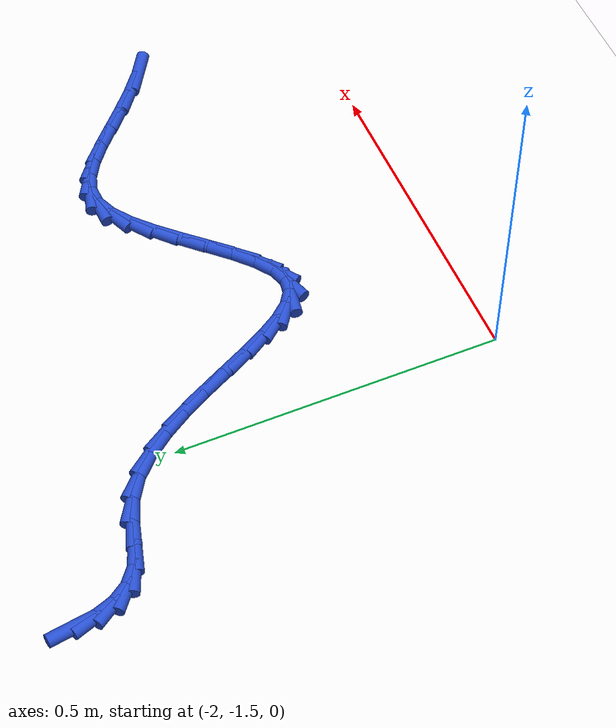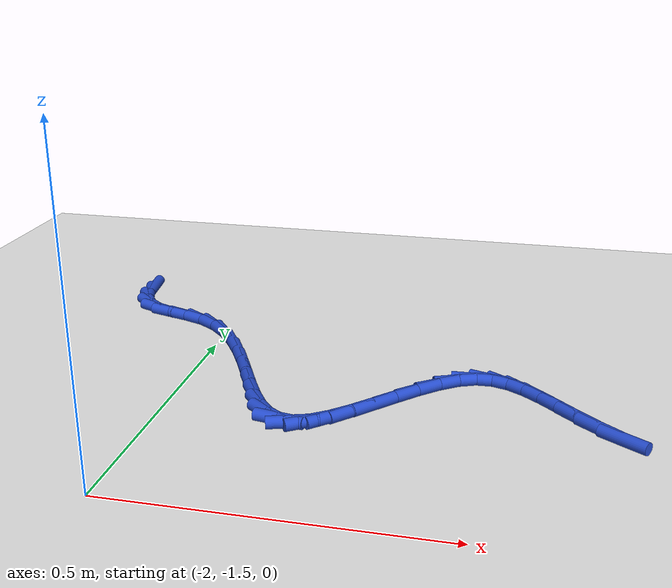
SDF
<sdf version="1.6">
 <world name="default">
  <model name="ground_plane">
   <static>1</static>
   <link name="link">
    <collision name="collision">
     <geometry><plane><normal>0 0 1</normal><size>100 100</size></plane></geometry>
     <surface><friction><ode><mu>100</mu><mu2>50</mu2></ode></friction></surface>
    </collision>
    <visual name="visual">
     <cast_shadows>0</cast_shadows>
     <geometry><plane><normal>0 0 1</normal><size>100 100</size></plane></geometry>
     <material>
      <script><uri>file://media/materials/scripts/gazebo.material</uri><name>Gazebo/WhiteGlow</name></script>
     </material>
    </visual>
   </link>
  </model>
  <model name="line">
   <link name="link_125">
    <pose>-2.2099271606794737 -0.7741217644108663 0.01 0 1.57 -1.4331314085117357</pose>
    <collision name="collision">
     <geometry><cylinder><radius>0.01</radius><length>0.08</length></cylinder></geometry>
    </collision>
    <visual name="visual">
     <material>
      <script><name>Gazebo/Blue</name><uri>file://media/materials/scripts/gazebo.material</uri></script>
     </material>
     <geometry><cylinder><radius>0.01</radius><length>0.08</length></cylinder></geometry>
    </visual>
   </link>
   <link name="link_126">
    <pose>-2.2053103885683636 -0.8074459412216787 0.01 0 1.57 -1.240996135593505</pose>
    <collision name="collision">
     <geometry><cylinder><radius>0.01</radius><length>0.08</length></cylinder></geometry>
    </collision>
    <visual name="visual">
     <material>
      <script><name>Gazebo/Blue</name><uri>file://media/materials/scripts/gazebo.material</uri></script>
     </material>
     <geometry><cylinder><radius>0.01</radius><length>0.08</length></cylinder></geometry>
    </visual>
   </link>
   <link name="link_127">
    <pose>-2.1953451962996913 -0.8365582542912782 0.01 0 1.57 -0.9869159704798931</pose>
    <collision name="collision">
     <geometry><cylinder><radius>0.01</radius><length>0.08</length></cylinder></geometry>
    </collision>
    <visual name="visual">
     <material>
      <script><name>Gazebo/Blue</name><uri>file://media/materials/scripts/gazebo.material</uri></script>
     </material>
     <geometry><cylinder><radius>0.01</radius><length>0.08</length></cylinder></geometry>
    </visual>
   </link>
   <link name="link_128">
    <pose>-2.1793203222098283 -0.8608115925272224 0.01 0 1.57 -0.6882502910422797</pose>
    <collision name="collision">
     <geometry><cylinder><radius>0.01</radius><length>0.08</length></cylinder></geometry>
    </collision>
    <visual name="visual">
     <material>
      <script><name>Gazebo/Blue</name><uri>file://media/materials/scripts/gazebo.material</uri></script>
     </material>
     <geometry><cylinder><radius>0.01</radius><length>0.08</length></cylinder></geometry>
    </visual>
   </link>
   <link name="link_129">
    <pose>-2.1565245046351453 -0.8795588448370683 0.01 0 1.57 -0.405371855896339</pose>
    <collision name="collision">
     <geometry><cylinder><radius>0.01</radius><length>0.08</length></cylinder></geometry>
    </collision>
    <visual name="visual">
     <material>
      <script><name>Gazebo/Blue</name><uri>file://media/materials/scripts/gazebo.material</uri></script>
     </material>
     <geometry><cylinder><radius>0.01</radius><length>0.08</length></cylinder></geometry>
    </visual>
   </link>
   <link name="link_130">
    <pose>-2.1264834247838382 -0.8924506675723213 0.01 0 1.57 -0.2873727111675844</pose>
    <collision name="collision">
     <geometry><cylinder><radius>0.01</radius><length>0.08</length></cylinder></geometry>
    </collision>
    <visual name="visual">
     <material>
      <script><name>Gazebo/Blue</name><uri>file://media/materials/scripts/gazebo.material</uri></script>
     </material>
     <geometry><cylinder><radius>0.01</radius><length>0.08</length></cylinder></geometry>
    </visual>
   </link>
   <link name="link_131">
    <pose>-2.09160453492498 -0.9027592550367908 0.01 0 1.57 -0.36228157171606634</pose>
    <collision name="collision">
     <geometry><cylinder><radius>0.01</radius><length>0.08</length></cylinder></geometry>
    </collision>
    <visual name="visual">
     <material>
      <script><name>Gazebo/Blue</name><uri>file://media/materials/scripts/gazebo.material</uri></script>
     </material>
     <geometry><cylinder><radius>0.01</radius><length>0.08</length></cylinder></geometry>
    </visual>
   </link>
   <link name="link_132">
    <pose>-2.056216787890274 -0.9161715621332107 0.01 0 1.57 -0.5795016874154675</pose>
    <collision name="collision">
     <geometry><cylinder><radius>0.01</radius><length>0.08</length></cylinder></geometry>
    </collision>
    <visual name="visual">
     <material>
      <script><name>Gazebo/Blue</name><uri>file://media/materials/scripts/gazebo.material</uri></script>
     </material>
     <geometry><cylinder><radius>0.01</radius><length>0.08</length></cylinder></geometry>
    </visual>
   </link>
   <link name="link_133">
    <pose>-2.0239500456421995 -0.9372887403643058 0.01 0 1.57 -0.7795203740744834</pose>
    <collision name="collision">
     <geometry><cylinder><radius>0.01</radius><length>0.08</length></cylinder></geometry>
    </collision>
    <visual name="visual">
     <material>
      <script><name>Gazebo/Blue</name><uri>file://media/materials/scripts/gazebo.material</uri></script>
     </material>
     <geometry><cylinder><radius>0.01</radius><length>0.08</length></cylinder></geometry>
    </visual>
   </link>
   <link name="link_134">
    <pose>-1.9951874962013274 -0.9657151413319348 0.01 0 1.57 -0.9216032327391552</pose>
    <collision name="collision">
     <geometry><cylinder><radius>0.01</radius><length>0.08</length></cylinder></geometry>
    </collision>
    <visual name="visual">
     <material>
      <script><name>Gazebo/Blue</name><uri>file://media/materials/scripts/gazebo.material</uri></script>
     </material>
     <geometry><cylinder><radius>0.01</radius><length>0.08</length></cylinder></geometry>
    </visual>
   </link>
   <link name="link_135">
    <pose>-1.9694149863297992 -0.9996740618134264 0.01 0 1.57 -1.0174581108824383</pose>
    <collision name="collision">
     <geometry><cylinder><radius>0.01</radius><length>0.08</length></cylinder></geometry>
    </collision>
    <visual name="visual">
     <material>
      <script><name>Gazebo/Blue</name><uri>file://media/materials/scripts/gazebo.material</uri></script>
     </material>
     <geometry><cylinder><radius>0.01</radius><length>0.08</length></cylinder></geometry>
    </visual>
   </link>
   <link name="link_136">
    <pose>-1.9461183322511024 -1.0373887515855258 0.01 0 1.57 -1.0776082232404423</pose>
    <collision name="collision">
     <geometry><cylinder><radius>0.01</radius><length>0.08</length></cylinder></geometry>
    </collision>
    <visual name="visual">
     <material>
      <script><name>Gazebo/Blue</name><uri>file://media/materials/scripts/gazebo.material</uri></script>
     </material>
     <geometry><cylinder><radius>0.01</radius><length>0.08</length></cylinder></geometry>
    </visual>
   </link>
   <link name="link_137">
    <pose>-1.9247833501887217 -1.0770824604249807 0.01 0 1.57 -1.108362508399515</pose>
    <collision name="collision">
     <geometry><cylinder><radius>0.01</radius><length>0.08</length></cylinder></geometry>
    </collision>
    <visual name="visual">
     <material>
      <script><name>Gazebo/Blue</name><uri>file://media/materials/scripts/gazebo.material</uri></script>
     </material>
     <geometry><cylinder><radius>0.01</radius><length>0.08</length></cylinder></geometry>
    </visual>
   </link>
   <link name="link_138">
    <pose>-1.9048958563661422 -1.1169784381085377 0.01 0 1.57 -1.1114701319373457</pose>
    <collision name="collision">
     <geometry><cylinder><radius>0.01</radius><length>0.08</length></cylinder></geometry>
    </collision>
    <visual name="visual">
     <material>
      <script><name>Gazebo/Blue</name><uri>file://media/materials/scripts/gazebo.material</uri></script>
     </material>
     <geometry><cylinder><radius>0.01</radius><length>0.08</length></cylinder></geometry>
    </visual>
   </link>
   <link name="link_139">
    <pose>-1.885941667006849 -1.1552999344129444 0.01 0 1.57 -1.0834192541162153</pose>
    <collision name="collision">
     <geometry><cylinder><radius>0.01</radius><length>0.08</length></cylinder></geometry>
    </collision>
    <visual name="visual">
     <material>
      <script><name>Gazebo/Blue</name><uri>file://media/materials/scripts/gazebo.material</uri></script>
     </material>
     <geometry><cylinder><radius>0.01</radius><length>0.08</length></cylinder></geometry>
    </visual>
   </link>
   <link name="link_140">
    <pose>-1.8674065983343282 -1.1902701991149462 0.01 0 1.57 -1.0127103165285651</pose>
    <collision name="collision">
     <geometry><cylinder><radius>0.01</radius><length>0.08</length></cylinder></geometry>
    </collision>
    <visual name="visual">
     <material>
      <script><name>Gazebo/Blue</name><uri>file://media/materials/scripts/gazebo.material</uri></script>
     </material>
     <geometry><cylinder><radius>0.01</radius><length>0.08</length></cylinder></geometry>
    </visual>
   </link>
   <link name="link_141">
    <pose>-1.8487764665720647 -1.2201124819912899 0.01 0 1.57 -0.8728568358156404</pose>
    <collision name="collision">
     <geometry><cylinder><radius>0.01</radius><length>0.08</length></cylinder></geometry>
    </collision>
    <visual name="visual">
     <material>
      <script><name>Gazebo/Blue</name><uri>file://media/materials/scripts/gazebo.material</uri></script>
     </material>
     <geometry><cylinder><radius>0.01</radius><length>0.08</length></cylinder></geometry>
    </visual>
   </link>
   <link name="link_142">
    <pose>-1.829537087943545 -1.243050032818723 0.01 0 1.57 -0.6107952433225379</pose>
    <collision name="collision">
     <geometry><cylinder><radius>0.01</radius><length>0.08</length></cylinder></geometry>
    </collision>
    <visual name="visual">
     <material>
      <script><name>Gazebo/Blue</name><uri>file://media/materials/scripts/gazebo.material</uri></script>
     </material>
     <geometry><cylinder><radius>0.01</radius><length>0.08</length></cylinder></geometry>
    </visual>
   </link>
   <link name="link_143">
    <pose>-1.8091742786722531 -1.2573061013739928 0.01 0 1.57 -0.1709408841984264</pose>
    <collision name="collision">
     <geometry><cylinder><radius>0.01</radius><length>0.08</length></cylinder></geometry>
    </collision>
    <visual name="visual">
     <material>
      <script><name>Gazebo/Blue</name><uri>file://media/materials/scripts/gazebo.material</uri></script>
     </material>
     <geometry><cylinder><radius>0.01</radius><length>0.08</length></cylinder></geometry>
    </visual>
   </link>
   <link name="link_144">
    <pose>-1.787173854981675 -1.2611039374338442 0.01 0 1.57 0.31864588016257506</pose>
    <collision name="collision">
     <geometry><cylinder><radius>0.01</radius><length>0.08</length></cylinder></geometry>
    </collision>
    <visual name="visual">
     <material>
      <script><name>Gazebo/Blue</name><uri>file://media/materials/scripts/gazebo.material</uri></script>
     </material>
     <geometry><cylinder><radius>0.01</radius><length>0.08</length></cylinder></geometry>
    </visual>
   </link>
   <link name="link_145">
    <pose>-1.763124151687636 -1.2531702469377581 0.01 0 1.57 0.6068742845066358</pose>
    <collision name="collision">
     <geometry><cylinder><radius>0.01</radius><length>0.08</length></cylinder></geometry>
    </collision>
    <visual name="visual">
     <material>
      <script><name>Gazebo/Blue</name><uri>file://media/materials/scripts/gazebo.material</uri></script>
     </material>
     <geometry><cylinder><radius>0.01</radius><length>0.08</length></cylinder></geometry>
    </visual>
   </link>
   <link name="link_146">
    <pose>-1.7372141756235175 -1.2351815620188682 0.01 0 1.57 0.7461648698047103</pose>
    <collision name="collision">
     <geometry><cylinder><radius>0.01</radius><length>0.08</length></cylinder></geometry>
    </collision>
    <visual name="visual">
     <material>
      <script><name>Gazebo/Blue</name><uri>file://media/materials/scripts/gazebo.material</uri></script>
     </material>
     <geometry><cylinder><radius>0.01</radius><length>0.08</length></cylinder></geometry>
    </visual>
   </link>
   <link name="link_147">
    <pose>-1.7098510332853813 -1.2098854753541457 0.01 0 1.57 0.8102026922660616</pose>
    <collision name="collision">
     <geometry><cylinder><radius>0.01</radius><length>0.08</length></cylinder></geometry>
    </collision>
    <visual name="visual">
     <material>
      <script><name>Gazebo/Blue</name><uri>file://media/materials/scripts/gazebo.material</uri></script>
     </material>
     <geometry><cylinder><radius>0.01</radius><length>0.08</length></cylinder></geometry>
    </visual>
   </link>
   <link name="link_148">
    <pose>-1.6814421390254757 -1.1800310914643435 0.01 0 1.57 0.8284667198220825</pose>
    <collision name="collision">
     <geometry><cylinder><radius>0.01</radius><length>0.08</length></cylinder></geometry>
    </collision>
    <visual name="visual">
     <material>
      <script><name>Gazebo/Blue</name><uri>file://media/materials/scripts/gazebo.material</uri></script>
     </material>
     <geometry><cylinder><radius>0.01</radius><length>0.08</length></cylinder></geometry>
    </visual>
   </link>
   <link name="link_149">
    <pose>-1.6523949071960524 -1.148367514870217 0.01 0 1.57 0.8094846025051035</pose>
    <collision name="collision">
     <geometry><cylinder><radius>0.01</radius><length>0.08</length></cylinder></geometry>
    </collision>
    <visual name="visual">
     <material>
      <script><name>Gazebo/Blue</name><uri>file://media/materials/scripts/gazebo.material</uri></script>
     </material>
     <geometry><cylinder><radius>0.01</radius><length>0.08</length></cylinder></geometry>
    </visual>
   </link>
   <link name="link_150">
    <pose>-1.6231167521493621 -1.11764385009252 0.01 0 1.57 0.7485934289594619</pose>
    <collision name="collision">
     <geometry><cylinder><radius>0.01</radius><length>0.08</length></cylinder></geometry>
    </collision>
    <visual name="visual">
     <material>
      <script><name>Gazebo/Blue</name><uri>file://media/materials/scripts/gazebo.material</uri></script>
     </material>
     <geometry><cylinder><radius>0.01</radius><length>0.08</length></cylinder></geometry>
    </visual>
   </link>
   <link name="link_151">
    <pose>-1.5940150882376547 -1.0906092016520055 0.01 0 1.57 0.6254935374672844</pose>
    <collision name="collision">
     <geometry><cylinder><radius>0.01</radius><length>0.08</length></cylinder></geometry>
    </collision>
    <visual name="visual">
     <material>
      <script><name>Gazebo/Blue</name><uri>file://media/materials/scripts/gazebo.material</uri></script>
     </material>
     <geometry><cylinder><radius>0.01</radius><length>0.08</length></cylinder></geometry>
    </visual>
   </link>
   <link name="link_152">
    <pose>-1.5654973298131796 -1.0700126740694267 0.01 0 1.57 0.3932558610759848</pose>
    <collision name="collision">
     <geometry><cylinder><radius>0.01</radius><length>0.08</length></cylinder></geometry>
    </collision>
    <visual name="visual">
     <material>
      <script><name>Gazebo/Blue</name><uri>file://media/materials/scripts/gazebo.material</uri></script>
     </material>
     <geometry><cylinder><radius>0.01</radius><length>0.08</length></cylinder></geometry>
    </visual>
   </link>
   <link name="link_153">
    <pose>-1.537968390789956 -1.0585918526874503 0.01 0 1.57 0.034418544223457984</pose>
    <collision name="collision">
     <geometry><cylinder><radius>0.01</radius><length>0.08</length></cylinder></geometry>
    </collision>
    <visual name="visual">
     <material>
      <script><name>Gazebo/Blue</name><uri>file://media/materials/scripts/gazebo.material</uri></script>
     </material>
     <geometry><cylinder><radius>0.01</radius><length>0.08</length></cylinder></geometry>
    </visual>
   </link>
   <link name="link_154">
    <pose>-1.5115286728639046 -1.0576814765701987 0.01 0 1.57 -0.30744727562769886</pose>
    <collision name="collision">
     <geometry><cylinder><radius>0.01</radius><length>0.08</length></cylinder></geometry>
    </collision>
    <visual name="visual">
     <material>
      <script><name>Gazebo/Blue</name><uri>file://media/materials/scripts/gazebo.material</uri></script>
     </material>
     <geometry><cylinder><radius>0.01</radius><length>0.08</length></cylinder></geometry>
    </visual>
   </link>
   <link name="link_155">
    <pose>-1.485686113010855 -1.0658868805794044 0.01 0 1.57 -0.5440824509447317</pose>
    <collision name="collision">
     <geometry><cylinder><radius>0.01</radius><length>0.08</length></cylinder></geometry>
    </collision>
    <visual name="visual">
     <material>
      <script><name>Gazebo/Blue</name><uri>file://media/materials/scripts/gazebo.material</uri></script>
     </material>
     <geometry><cylinder><radius>0.01</radius><length>0.08</length></cylinder></geometry>
    </visual>
   </link>
   <link name="link_156">
    <pose>-1.4598804300850758 -1.0814991279900628 0.01 0 1.57 -0.68043244943561</pose>
    <collision name="collision">
     <geometry><cylinder><radius>0.01</radius><length>0.08</length></cylinder></geometry>
    </collision>
    <visual name="visual">
     <material>
      <script><name>Gazebo/Blue</name><uri>file://media/materials/scripts/gazebo.material</uri></script>
     </material>
     <geometry><cylinder><radius>0.01</radius><length>0.08</length></cylinder></geometry>
    </visual>
   </link>
   <link name="link_157">
    <pose>-1.4335513429408357 -1.1028092820771664 0.01 0 1.57 -0.745321503612546</pose>
    <collision name="collision">
     <geometry><cylinder><radius>0.01</radius><length>0.08</length></cylinder></geometry>
    </collision>
    <visual name="visual">
     <material>
      <script><name>Gazebo/Blue</name><uri>file://media/materials/scripts/gazebo.material</uri></script>
     </material>
     <geometry><cylinder><radius>0.01</radius><length>0.08</length></cylinder></geometry>
    </visual>
   </link>
   <link name="link_158">
    <pose>-1.4061385704324028 -1.1281084061157098 0.01 0 1.57 -0.7593149414153066</pose>
    <collision name="collision">
     <geometry><cylinder><radius>0.01</radius><length>0.08</length></cylinder></geometry>
    </collision>
    <visual name="visual">
     <material>
      <script><name>Gazebo/Blue</name><uri>file://media/materials/scripts/gazebo.material</uri></script>
     </material>
     <geometry><cylinder><radius>0.01</radius><length>0.08</length></cylinder></geometry>
    </visual>
   </link>
   <link name="link_159">
    <pose>-1.377081831414045 -1.1556875633806871 0.01 0 1.57 -0.7330865997903506</pose>
    <collision name="collision">
     <geometry><cylinder><radius>0.01</radius><length>0.08</length></cylinder></geometry>
    </collision>
    <visual name="visual">
     <material>
      <script><name>Gazebo/Blue</name><uri>file://media/materials/scripts/gazebo.material</uri></script>
     </material>
     <geometry><cylinder><radius>0.01</radius><length>0.08</length></cylinder></geometry>
    </visual>
   </link>
   <link name="link_160">
    <pose>-1.3458208447400302 -1.183837817147093 0.01 0 1.57 -0.6710023568032122</pose>
    <collision name="collision">
     <geometry><cylinder><radius>0.01</radius><length>0.08</length></cylinder></geometry>
    </collision>
    <visual name="visual">
     <material>
      <script><name>Gazebo/Blue</name><uri>file://media/materials/scripts/gazebo.material</uri></script>
     </material>
     <geometry><cylinder><radius>0.01</radius><length>0.08</length></cylinder></geometry>
    </visual>
   </link>
   <link name="link_161">
    <pose>-1.3117953292646272 -1.210850230689919 0.01 0 1.57 -0.5742629135591726</pose>
    <collision name="collision">
     <geometry><cylinder><radius>0.01</radius><length>0.08</length></cylinder></geometry>
    </collision>
    <visual name="visual">
     <material>
      <script><name>Gazebo/Blue</name><uri>file://media/materials/scripts/gazebo.material</uri></script>
     </material>
     <geometry><cylinder><radius>0.01</radius><length>0.08</length></cylinder></geometry>
    </visual>
   </link>
  </model>
 </world>
</sdf>
